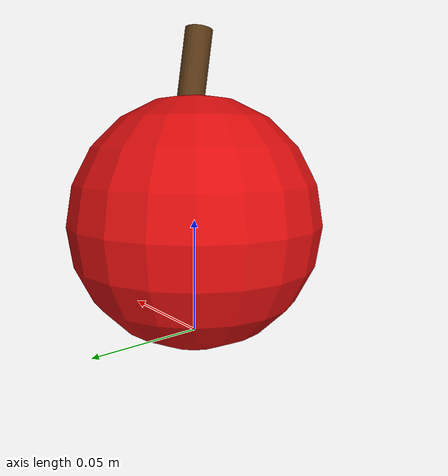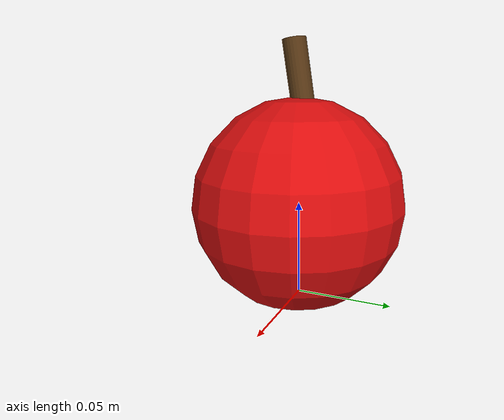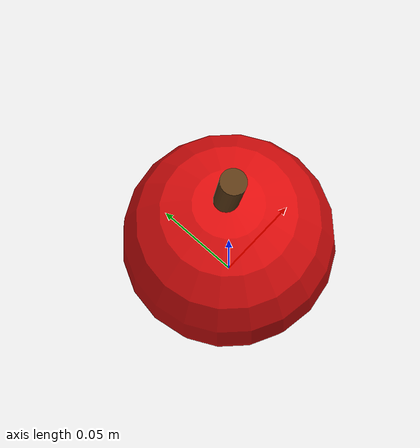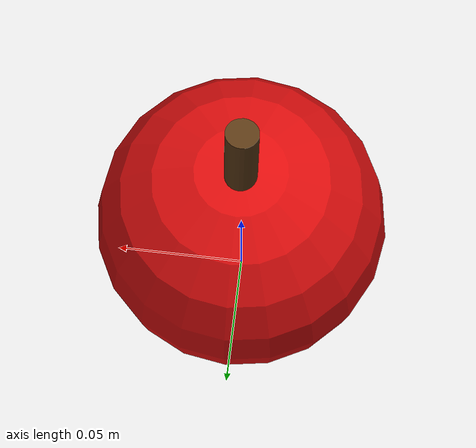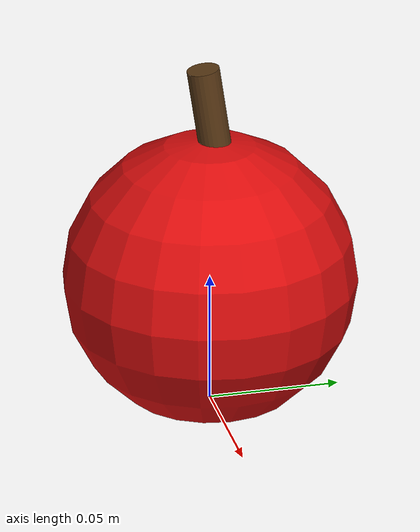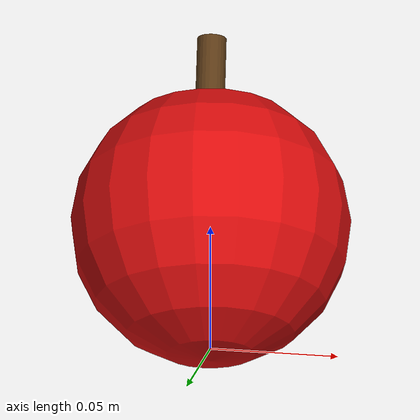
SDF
<?xml version="1.0"?>
<sdf version="1.6">
  <model name="yolo_apple">
    <static>true</static>
    <link name="link">
      <visual name="body">
        <pose>0 0 0.05 0 0 0</pose>
        <geometry><sphere><radius>0.055</radius></sphere></geometry>
        <material>
          <ambient>0.6 0.02 0.02 1</ambient>
          <diffuse>0.85 0.05 0.05 1</diffuse>
          <specular>0.4 0.2 0.2 1</specular>
        </material>
      </visual>
      <visual name="stem">
        <pose>0 0 0.115 0.15 0 0</pose>
        <geometry><cylinder><radius>0.006</radius><length>0.035</length></cylinder></geometry>
        <material>
          <ambient>0.25 0.15 0.05 1</ambient>
          <diffuse>0.35 0.22 0.08 1</diffuse>
        </material>
      </visual>
    </link>
  </model>
</sdf>
